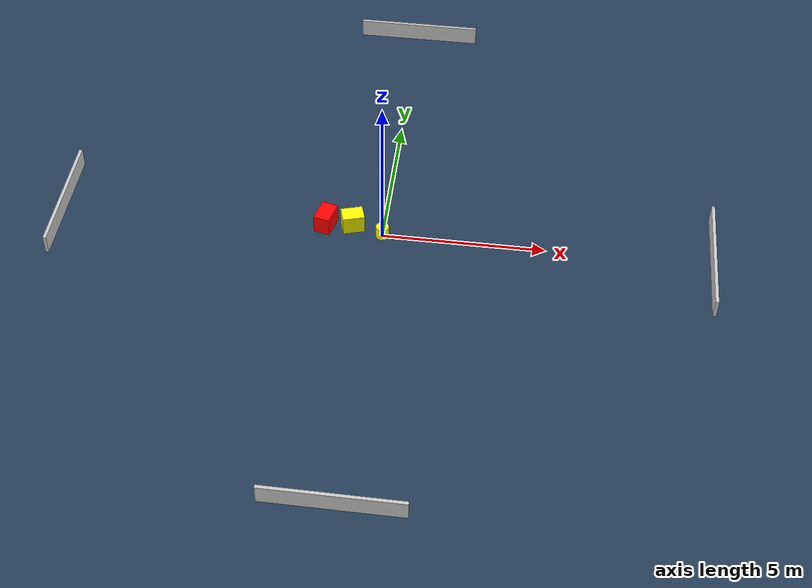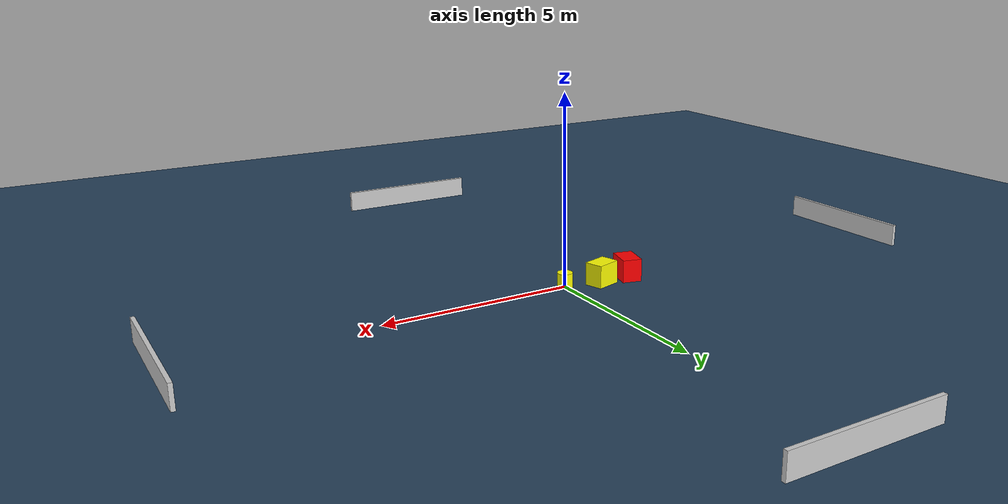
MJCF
<?xml version="1.0" ?>
<mujoco model="generated_environment">
  <option timestep="0.01" integrator="RK4" cone="elliptic"/>
  <default>
    <geom density="1"/>
  </default>
  <asset>
    <texture builtin="gradient" height="3072" name="skybox" rgb1="0.3 0.5 0.7" rgb2="0 0 0" type="skybox" width="512"/>
    <texture builtin="checker" height="300" name="groundplane" rgb1="0.2 0.3 0.4" rgb2="0.1 0.2 0.3" type="2d" width="300"/>
    <material name="groundplane" reflectance="0.2" texrepeat="5 5" texture="groundplane"/>
  </asset>
  <worldbody>
    <light dir="0 0 -1" directional="true" pos="0 0 1.5"/>
    <geom condim="3" friction="0.5 0.005 0.001" material="groundplane" name="floor" pos="0 0 0" size="0 0 0.05" type="plane"/>
    <body name="walls">
      <geom name="wall_1" condim="4" pos="-10.0 0.0 0.3" rgba="0.800000011920929 0.800000011920929 0.800000011920929 1.0" size="0.05 2.0 0.3" type="box"/>
      <geom name="wall_2" condim="4" pos="10.0 0.0 0.3" rgba="0.800000011920929 0.800000011920929 0.800000011920929 1.0" size="0.05 2.0 0.3" type="box"/>
      <geom name="wall_3" condim="4" pos="0.0 -10.0 0.3" rgba="0.800000011920929 0.800000011920929 0.800000011920929 1.0" size="2.0 0.05 0.3" type="box"/>
      <geom name="wall_4" condim="4" pos="0.0 10.0 0.3" rgba="0.800000011920929 0.800000011920929 0.800000011920929 1.0" size="2.0 0.05 0.3" type="box"/>
    </body>
    <body name="robot">
      <joint name="joint_x" type="slide" pos="0 0 0" axis="1 0 0"/>
      <joint name="joint_y" type="slide" pos="0 0 0" axis="0 1 0"/>
      <geom name="robot" type="cylinder" pos="0.0 0.0 0.2" size="0.2 0.2 0.0" mass="5.0" friction="1.0 0.005 0.0001" condim="4" rgba="1.0 1.0 0.0 1.0"/>
    </body>
    <body name="obstacle_1_movable">
      <geom name="obstacle_1_movable" condim="4" pos="-0.9523100273630603 0.26086439815236684 0.3" euler="0 0 17.081838550427566" friction="0.0 0.005 0.001" rgba="1.0 1.0 0.0 1.0" size="0.3363292451345752 0.24941272235199935 0.3" type="box" mass="0.1"/>
      <joint type="free"/>
    </body>
    <body name="obstacle_2_static">
      <geom name="obstacle_2_static" condim="4" pos="-1.781819505497414 0.23536250561968652 0.3" euler="0 0 256.0634015381008" friction="0.0 0.005 0.001" rgba="1.0 0.0 0.0 1.0" size="0.3662347678836033 0.25482789226567465 0.3" type="box"/>
    </body>
  </worldbody>
  <actuator>
    <motor name="actuator_x" joint="joint_x" gear="1" ctrlrange="-1 1"/>
    <motor name="actuator_y" joint="joint_y" gear="1" ctrlrange="-1 1"/>
  </actuator>
</mujoco>
